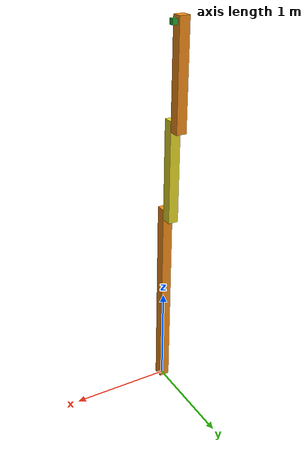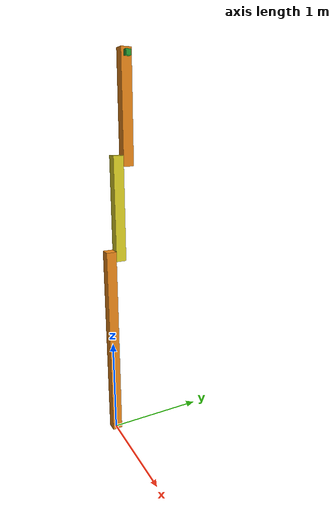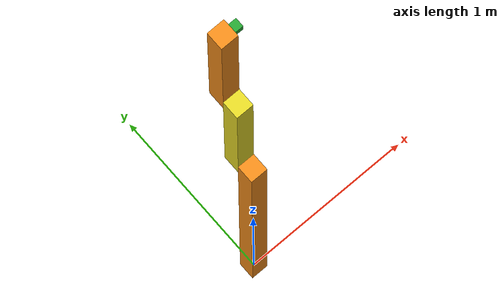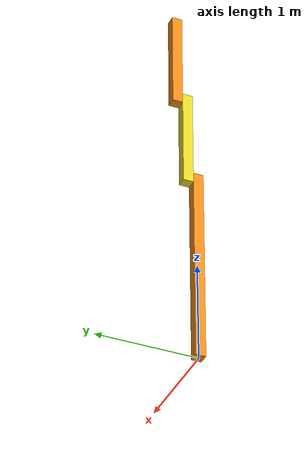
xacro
<?xml version="1.0"?>
<robot name="rrbot" xmlns:xacro="http://www.ros.org/wiki/xacro">

<!-- ****************************************************** RRBot Robot **************************************************************  -->
<!-- Muthanna Alwahash                                                                                                                  -->
<!-- March 2022                                                                                                                         -->

<!-- ****************************************************** Parameters ***************************************************************  -->

    <xacro:property name="pkg_path"     value="$(find rrbot)"           />
    <xacro:property name="mesh_path"    value="${pkg_path}/meshes/"     />
    <xacro:property name="xacro_path"   value="${pkg_path}/xacro/"      />
    <xacro:property name="config_path"  value="${pkg_path}/config/"     />

    <xacro:property name="name_space"   value="rrbot" />
    <xacro:property name="prefix"       value=""      />

<!-- ****************************************************** Includes *****************************************************************  -->

    <xacro:include filename="${xacro_path}common_rviz_materials.xacro" />    <!--  RVIZ Colors  -->
    <xacro:include filename="${xacro_path}rrbot_gz.xacro" />                 <!--  Gazebo Sim   -->
    <xacro:include filename="${xacro_path}rrbot_r2c.xacro" />                <!--  ROS2_Control -->
    <xacro:include filename="${xacro_path}rrbot_urdf.xacro" />               <!--  Robot URDF   -->

<!-- ****************************************************** END **********************************************************************  -->

</robot>

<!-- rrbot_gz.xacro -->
<robot name="rrbot" xmlns:xacro="http://www.ros.org/wiki/xacro">

<!-- ****************************************************** RRBot Robot **************************************************************  -->
<!-- Muthanna Alwahash                                                                                                                  -->
<!-- March 2022                                                                                                                         -->

<!-- ****************************************************** Base Link ****************************************************************  -->

  <gazebo reference="${prefix}base">
      <mu1>0.2</mu1>
      <mu2>0.2</mu2>
      <material>Gazebo/Orange</material>
  </gazebo>

<!-- ****************************************************** Link 1 *******************************************************************  -->

  <gazebo reference="${prefix}link2">
      <mu1>0.2</mu1>
      <mu2>0.2</mu2>
      <material>Gazebo/Orange</material>
  </gazebo>

<!-- ****************************************************** Link 2 *******************************************************************  -->

  <gazebo reference="${prefix}link3">
      <mu1>0.2</mu1>
      <mu2>0.2</mu2>
      <material>Gazebo/Orange</material>
  </gazebo>

<!-- ****************************************************** Camera Link **************************************************************  -->

  <gazebo reference="${prefix}camera">
      <mu1>0.2</mu1>
      <mu2>0.2</mu2>
      <material>Gazebo/Green</material>
  </gazebo>

<!-- ****************************************************** World Link ****************************************************************  -->

  <link name="world"/>

  <gazebo reference="world">
    <static>true</static>
  </gazebo>

<!-- ****************************************************** ROS Control Plugin *******************************************************  -->

  <gazebo>
    <plugin name="gz_ros2_control" filename="libgazebo_ros2_control.so">
      <parameters>${config_path}rrbot_forward_position.yaml</parameters>
    </plugin>
  </gazebo>

<!-- ******************************************************  Joint States Publisher **************************************************  -->

  <gazebo>
    <plugin name="joint_states_pub" filename="libgazebo_ros_joint_state_publisher.so">
      <ros>
        <namespace>${name_space}</namespace>
      </ros>
      <joint_name>${prefix}base_joint</joint_name>
      <joint_name>${prefix}joint1</joint_name>
      <joint_name>${prefix}joint2</joint_name>
      <update_rate>100.0</update_rate>
    </plugin>
 </gazebo>

<!-- ******************************************************  Camera ******************************************************************  -->

  <gazebo reference="${prefix}camera">
    <sensor type="camera" name="camera">
      <update_rate>30.0</update_rate>
      <camera name="head">
        <horizontal_fov>${radians(80)}</horizontal_fov>
        <image>
          <width>1280</width>
          <height>720</height>
          <format>R8G8B8</format>
        </image>
        <clip>
          <near>0.02</near>
          <far>300</far>
        </clip>
        <noise>
          <type>gaussian</type>
          <!-- Noise is sampled independently per pixel on each frame.
          That pixel's noise value is added to each of its color
          channels, which at that point lie in the range [0,1]. -->
          <mean>0.0</mean>
          <stddev>0.007</stddev>
        </noise>
      </camera>
      <plugin name="camera_controller" filename="libgazebo_ros_camera.so">
        <ros>
          <namespace>${name_space}</namespace>
        </ros>
        <alwaysOn>true</alwaysOn>
        <updateRate>0.0</updateRate>
        <cameraName>camera</cameraName>
        <imageTopicName>image_raw</imageTopicName>
        <cameraInfoTopicName>camera_info</cameraInfoTopicName>
        <frameName>camera_optical</frameName>
        <!-- setting hackBaseline to anything but 0.0 will cause a misalignment
        between the gazebo sensor image and the frame it is supposed to
        be attached to -->
        <hackBaseline>0.0</hackBaseline>
        <distortionK1>0.0</distortionK1>
        <distortionK2>0.0</distortionK2>
        <distortionK3>0.0</distortionK3>
        <distortionT1>0.0</distortionT1>
        <distortionT2>0.0</distortionT2>
        <CxPrime>0</CxPrime>
        <Cx>0.0</Cx>
        <Cy>0.0</Cy>
        <focalLength>0.0</focalLength>
      </plugin>
    </sensor>
    <material>Gazebo/Green</material>
  </gazebo>

<!-- ****************************************************** END **********************************************************************  -->

</robot>

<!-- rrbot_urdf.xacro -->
<robot name="rrbot" xmlns:xacro="http://www.ros.org/wiki/xacro">

<!-- ****************************************************** RRBot Robot **************************************************************  -->
<!-- Muthanna Alwahash                                                                                                                  -->
<!-- March 2022                                                                                                                         -->

<!-- ****************************************************** Parameters ***************************************************************  -->

  <xacro:property name="mass"           value="1"                       /> <!-- arbitrary value for mass -->
  <xacro:property name="width"          value="0.1"                     /> <!-- Square dimensions (widthxwidth) of beams -->
  <xacro:property name="height1"        value="2"                       /> <!-- Link 1 (Base) -->
  <xacro:property name="height2"        value="1"                       /> <!-- Link 2 -->
  <xacro:property name="height3"        value="1"                       /> <!-- Link 3 -->

  <xacro:property name="joint_gap"      value="0.05"                    /> <!-- Space btw top of beam and the each joint -->
  <xacro:property name="joint1_y"       value="${width}"                />
  <xacro:property name="joint1_z"       value="${height1-joint_gap}"    />
  <xacro:property name="joint2_y"       value="${width}"                />
  <xacro:property name="joint2_z"       value="${height2-joint_gap*2}"  />

  <xacro:property name="camera_mass"    value="1e-5"     />
  <xacro:property name="camera_width"   value="0.05"     />
  <xacro:property name="camera_length"  value="0.05"     />
  <xacro:property name="camera_height"  value="0.05"     />
  <xacro:property name="camera_x"       value="${(width+camera_width)/2}" />
  <xacro:property name="camera_z"       value="${height3-joint_gap*2}" />

  <xacro:property name="hokuyo_mass"    value="1e-5"     />
  <xacro:property name="hokuyo_width"   value="0.05"     />
  <xacro:property name="hokuyo_length"  value="0.05"     />
  <xacro:property name="hokuyo_height"  value="0.0706"   />
  <xacro:property name="hokuyo_z"       value="${height3-joint_gap/2}" />

  <xacro:property name="tool_z"         value="${height3}" />

<!-- ****************************************************** Base Joint ***************************************************************  -->

  <joint name="${prefix}base_joint" type="fixed">
    <origin xyz="0 0 0" rpy="0 0 0" />
    <parent link="world"/>
    <child link="${prefix}base" />
  </joint>

<!-- ****************************************************** Base Link ****************************************************************  -->

  <link name="${prefix}base">
    <collision>
      <origin xyz="0 0 ${height1/2}" rpy="0 0 0"/>
      <geometry>
        <box size="${width} ${width} ${height1}"/>
      </geometry>
    </collision>
    <visual>
      <origin xyz="0 0 ${height1/2}" rpy="0 0 0"/>
      <geometry>
        <box size="${width} ${width} ${height1}"/>
      </geometry>
      <material name="orange"/>
    </visual>
    <inertial>
      <origin xyz="0 0 ${height1/2}" rpy="0 0 0"/>
      <mass value="${mass}"/>
      <inertia
        ixx="${mass / 12.0 * (width*width + height1*height1)}" ixy="0.0" ixz="0.0"
        iyy="${mass / 12.0 * (height1*height1 + width*width)}" iyz="0.0"
        izz="${mass / 12.0 * (width*width + width*width)}"/>
    </inertial>
  </link>

<!-- ****************************************************** Joint 1 ******************************************************************  -->

  <joint name="${prefix}joint1" type="continuous">
    <parent link="${prefix}base"/>
    <child link="${prefix}link2"/>
    <origin xyz="0 ${joint1_y} ${joint1_z}" rpy="0 0 0"/>
    <axis xyz="0 1 0"/>
    <dynamics damping="0.7"/>
  </joint>

<!-- ****************************************************** Link 2 *******************************************************************  -->

  <link name="${prefix}link2">
    <collision>
      <origin xyz="0 0 ${height2/2 - joint_gap}" rpy="0 0 0"/>
      <geometry>
        <box size="${width} ${width} ${height2}"/>
      </geometry>
    </collision>
    <visual>
      <origin xyz="0 0 ${height2/2 - joint_gap}" rpy="0 0 0"/>
      <geometry>
        <box size="${width} ${width} ${height2}"/>
      </geometry>
      <material name="yellow"/>
    </visual>
    <inertial>
      <origin xyz="0 0 ${height2/2 - joint_gap}" rpy="0 0 0"/>
      <mass value="${mass}"/>
      <inertia
        ixx="${mass / 12.0 * (width*width + height2*height2)}" ixy="0.0" ixz="0.0"
        iyy="${mass / 12.0 * (height2*height2 + width*width)}" iyz="0.0"
        izz="${mass / 12.0 * (width*width + width*width)}"/>
    </inertial>
  </link>

<!-- ****************************************************** Joint 2 ******************************************************************  -->

  <joint name="${prefix}joint2" type="continuous">
    <parent link="${prefix}link2"/>
    <child link="${prefix}link3"/>
    <origin xyz="0 ${joint2_y} ${joint2_z}" rpy="0 0 0"/>
    <axis xyz="0 1 0"/>
    <dynamics damping="0.7"/>
  </joint>

<!-- ****************************************************** Link 3 *******************************************************************  -->

  <link name="${prefix}link3">
    <collision>
      <origin xyz="0 0 ${height3/2 - joint_gap}" rpy="0 0 0"/>
      <geometry>
        <box size="${width} ${width} ${height3}"/>
      </geometry>
    </collision>
    <visual>
      <origin xyz="0 0 ${height3/2 - joint_gap}" rpy="0 0 0"/>
      <geometry>
        <box size="${width} ${width} ${height3}"/>
      </geometry>
      <material name="orange"/>
    </visual>
    <inertial>
      <origin xyz="0 0 ${height3/2 - joint_gap}" rpy="0 0 0"/>
      <mass value="${mass}"/>
      <inertia
        ixx="${mass / 12.0 * (width*width + height3*height3)}" ixy="0.0" ixz="0.0"
        iyy="${mass / 12.0 * (height3*height3 + width*width)}" iyz="0.0"
        izz="${mass / 12.0 * (width*width + width*width)}"/>
    </inertial>
  </link>

<!-- ****************************************************** Tool Joint ***************************************************************  -->

  <joint name="${prefix}tool_joint" type="fixed">
    <origin xyz="0 0 ${tool_z}" rpy="0 0 0" />
    <parent link="${prefix}link3"/>
    <child link="${prefix}tool" />
  </joint>

<!-- ****************************************************** Tool Link ****************************************************************  -->

  <link name="${prefix}tool" />

<!-- ****************************************************** Camera Joint *************************************************************  -->

  <joint name="${prefix}camera_joint" type="fixed">
    <axis xyz="0 1 0" />
    <origin xyz="${camera_x} 0 ${camera_z}" rpy="0 0 0"/>
    <parent link="${prefix}link3"/>
    <child link="${prefix}camera"/>
  </joint>

<!-- ****************************************************** Camera Link **************************************************************  -->

<link name="${prefix}camera">
  <inertial>
    <mass value="${camera_mass}"/>
    <origin xyz="0 0 0" rpy=" 0 0 0"/>
    <inertia ixx="1e-6" ixy="0" ixz="0" iyy="1e-6" iyz="0" izz="1e-6" />
  </inertial>
  <visual name="camera_visual">
    <origin xyz="0 0 0" rpy="0 0 0" />
    <geometry>
      <box size="${camera_length} ${camera_width} ${camera_height}"/>
    </geometry>
    <material name="green"/>
  </visual>
  <collision name="camera_colision">
    <origin xyz="0 0 0" rpy="0 0 0" />
    <geometry>
      <box size="${camera_length} ${camera_width} ${camera_height}"/>
    </geometry>
  </collision>
</link>

<!-- ****************************************************** Camera Optical Joint *****************************************************  -->
<!-- generate an optical frame http://www.ros.org/reps/rep-0103.html#suffix-frames so that ros and opencv can operate on the camera     -->
<!-- frame correctly. these values have to be these values otherwise the gazebo camera image won't be aligned properly with the frame   -->
<!-- it is supposedly originating from                                                                                                  -->

  <joint name="${prefix}camera_optical_joint" type="fixed">
    <origin xyz="0 0 0" rpy="${-radians(90)} 0 ${-radians(90)}"/>
    <parent link="${prefix}camera"/>
    <child link="${prefix}camera_optical"/>
  </joint>

<!-- ****************************************************** Camera Optical Link ******************************************************  -->

  <link name="${prefix}camera_optical"/>

<!-- ****************************************************** END **********************************************************************  -->

</robot>
